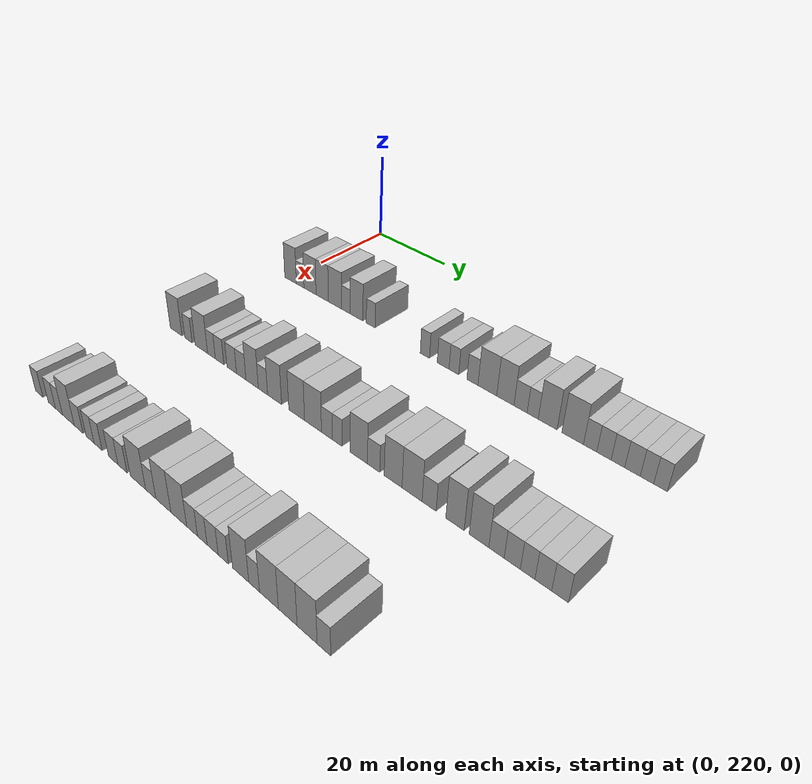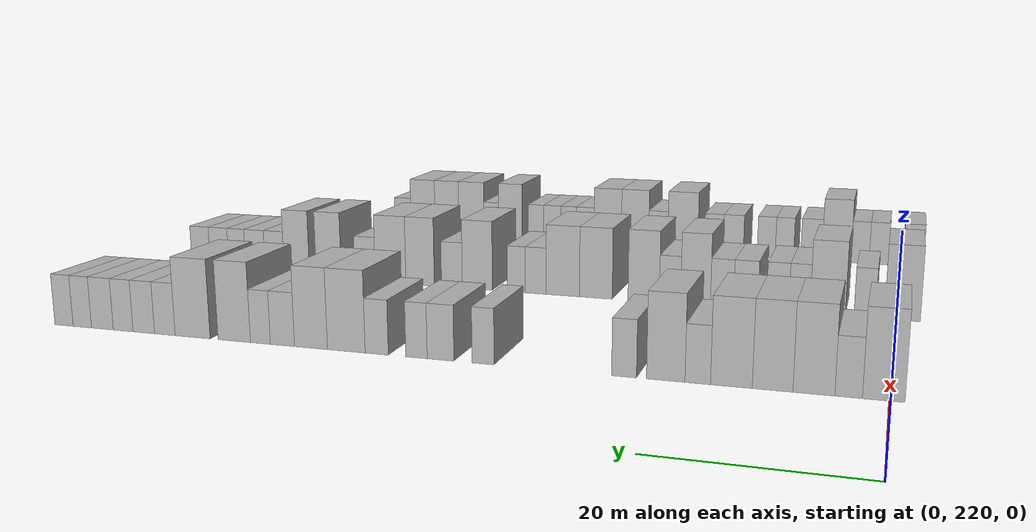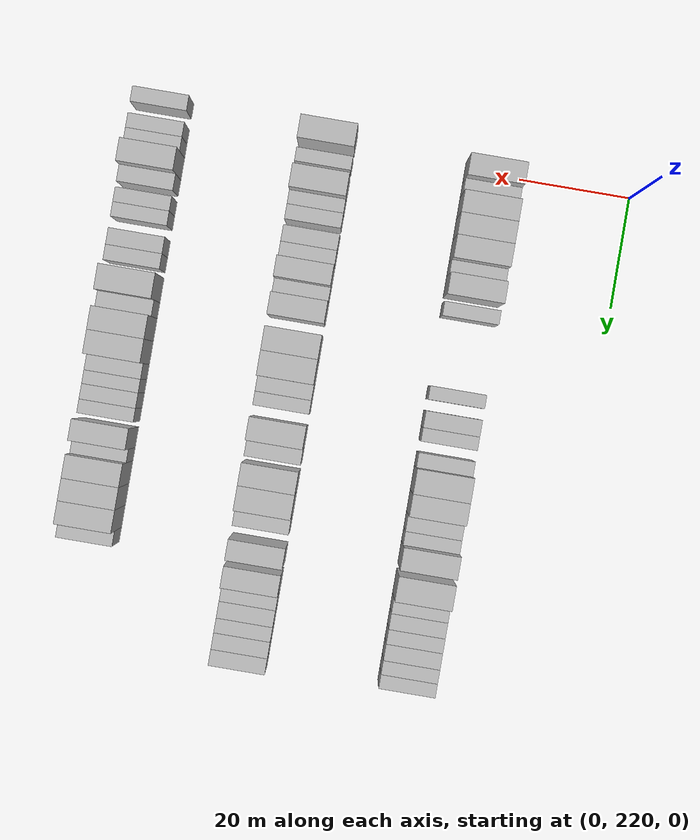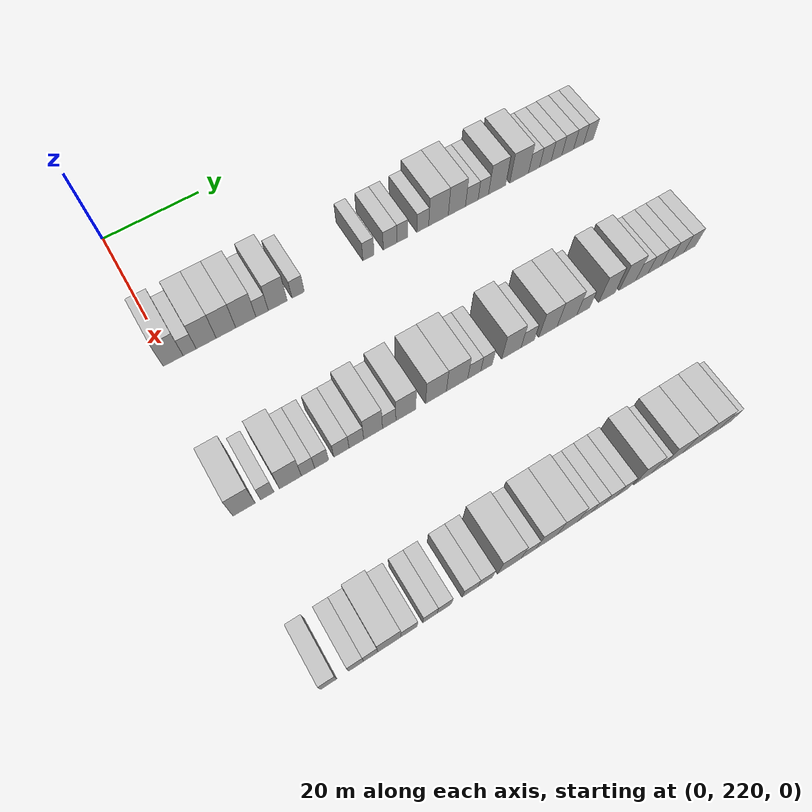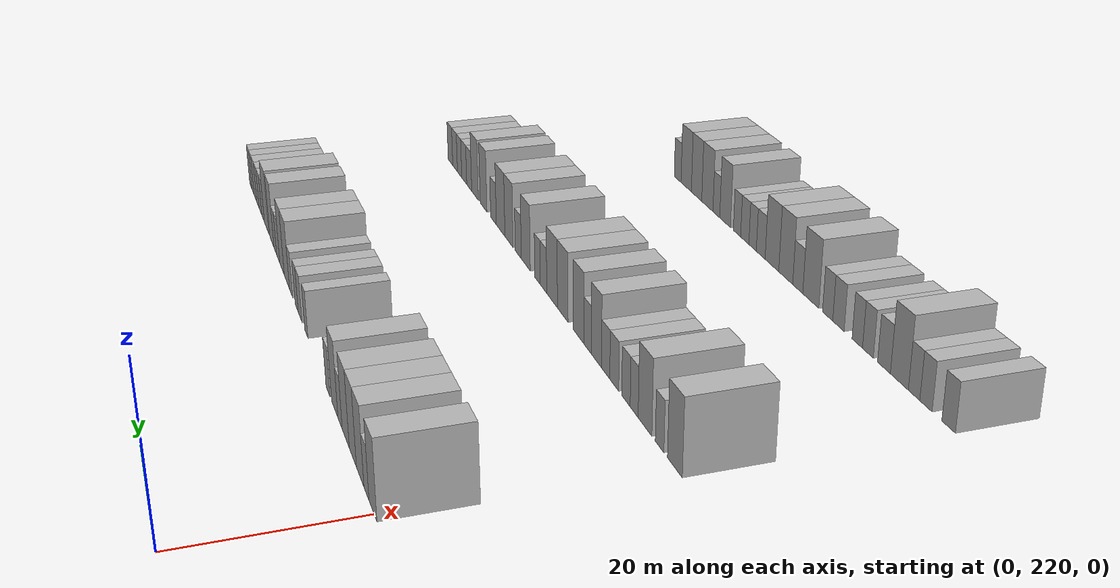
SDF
<sdf version="1.6">
 <world name="default">
  <model name="building_164">
   <static>1</static>
   <pose>25.0000 220.5642 0 0.000000 0.000000 0.000000</pose>
   <link name="link">
    <pose>0 0 4.50 0 0 0</pose>
    <collision name="collision"><geometry><box><size>10.0000 3.8635 9.0000</size></box></geometry></collision>
    <visual name="visual">
     <cast_shadows>0</cast_shadows>
     <geometry><box><size>10.0000 3.8635 9.0000</size></box></geometry>
     <material>
      <script>
       <uri>model://HANNAS_wall/materials/scripts</uri>
       <uri>model://HANNAS_wall/materials/textures</uri>
       <name>vrc/HANNAS_wall</name>
      </script>
     </material>
    </visual>
   </link>
  </model>
  <model name="building_165">
   <static>1</static>
   <pose>25.0000 223.7632 0 0.000000 0.000000 0.000000</pose>
   <link name="link">
    <pose>0 0 3.00 0 0 0</pose>
    <collision name="collision"><geometry><box><size>10.0000 2.5344 6.0000</size></box></geometry></collision>
    <visual name="visual">
     <cast_shadows>0</cast_shadows>
     <geometry><box><size>10.0000 2.5344 6.0000</size></box></geometry>
     <material>
      <script>
       <uri>model://HANNAS_wall/materials/scripts</uri>
       <uri>model://HANNAS_wall/materials/textures</uri>
       <name>vrc/HANNAS_wall</name>
      </script>
     </material>
    </visual>
   </link>
  </model>
  <model name="building_166">
   <static>1</static>
   <pose>25.0000 226.9900 0 0.000000 0.000000 0.000000</pose>
   <link name="link">
    <pose>0 0 4.50 0 0 0</pose>
    <collision name="collision"><geometry><box><size>10.0000 3.9194 9.0000</size></box></geometry></collision>
    <visual name="visual">
     <cast_shadows>0</cast_shadows>
     <geometry><box><size>10.0000 3.9194 9.0000</size></box></geometry>
     <material>
      <script>
       <uri>model://HANNAS_wall/materials/scripts</uri>
       <uri>model://HANNAS_wall/materials/textures</uri>
       <name>vrc/HANNAS_wall</name>
      </script>
     </material>
    </visual>
   </link>
  </model>
  <model name="building_167">
   <static>1</static>
   <pose>25.0000 230.8862 0 0.000000 0.000000 0.000000</pose>
   <link name="link">
    <pose>0 0 4.50 0 0 0</pose>
    <collision name="collision"><geometry><box><size>10.0000 3.8729 9.0000</size></box></geometry></collision>
    <visual name="visual">
     <cast_shadows>0</cast_shadows>
     <geometry><box><size>10.0000 3.8729 9.0000</size></box></geometry>
     <material>
      <script>
       <uri>model://HANNAS_wall/materials/scripts</uri>
       <uri>model://HANNAS_wall/materials/textures</uri>
       <name>vrc/HANNAS_wall</name>
      </script>
     </material>
    </visual>
   </link>
  </model>
  <model name="building_168">
   <static>1</static>
   <pose>25.0000 234.8520 0 0.000000 0.000000 0.000000</pose>
   <link name="link">
    <pose>0 0 4.50 0 0 0</pose>
    <collision name="collision"><geometry><box><size>10.0000 4.0587 9.0000</size></box></geometry></collision>
    <visual name="visual">
     <cast_shadows>0</cast_shadows>
     <geometry><box><size>10.0000 4.0587 9.0000</size></box></geometry>
     <material>
      <script>
       <uri>model://HANNAS_wall/materials/scripts</uri>
       <uri>model://HANNAS_wall/materials/textures</uri>
       <name>vrc/HANNAS_wall</name>
      </script>
     </material>
    </visual>
   </link>
  </model>
  <model name="building_169">
   <static>1</static>
   <pose>25.0000 238.1397 0 0.000000 0.000000 0.000000</pose>
   <link name="link">
    <pose>0 0 3.00 0 0 0</pose>
    <collision name="collision"><geometry><box><size>10.0000 2.5167 6.0000</size></box></geometry></collision>
    <visual name="visual">
     <cast_shadows>0</cast_shadows>
     <geometry><box><size>10.0000 2.5167 6.0000</size></box></geometry>
     <material>
      <script>
       <uri>model://HANNAS_wall/materials/scripts</uri>
       <uri>model://HANNAS_wall/materials/textures</uri>
       <name>vrc/HANNAS_wall</name>
      </script>
     </material>
    </visual>
   </link>
  </model>
  <model name="building_170">
   <static>1</static>
   <pose>25.0000 241.3218 0 0.000000 0.000000 0.000000</pose>
   <link name="link">
    <pose>0 0 4.50 0 0 0</pose>
    <collision name="collision"><geometry><box><size>10.0000 3.8475 9.0000</size></box></geometry></collision>
    <visual name="visual">
     <cast_shadows>0</cast_shadows>
     <geometry><box><size>10.0000 3.8475 9.0000</size></box></geometry>
     <material>
      <script>
       <uri>model://HANNAS_wall/materials/scripts</uri>
       <uri>model://HANNAS_wall/materials/textures</uri>
       <name>vrc/HANNAS_wall</name>
      </script>
     </material>
    </visual>
   </link>
  </model>
  <model name="building_171">
   <static>1</static>
   <pose>25.0000 245.5168 0 0.000000 0.000000 0.000000</pose>
   <link name="link">
    <pose>0 0 3.00 0 0 0</pose>
    <collision name="collision"><geometry><box><size>10.0000 2.5425 6.0000</size></box></geometry></collision>
    <visual name="visual">
     <cast_shadows>0</cast_shadows>
     <geometry><box><size>10.0000 2.5425 6.0000</size></box></geometry>
     <material>
      <script>
       <uri>model://HANNAS_wall/materials/scripts</uri>
       <uri>model://HANNAS_wall/materials/textures</uri>
       <name>vrc/HANNAS_wall</name>
      </script>
     </material>
    </visual>
   </link>
  </model>
  <model name="building_172">
   <static>1</static>
   <pose>25.0000 260.4118 0 0.000000 0.000000 0.000000</pose>
   <link name="link">
    <pose>0 0 3.00 0 0 0</pose>
    <collision name="collision"><geometry><box><size>10.0000 2.4159 6.0000</size></box></geometry></collision>
    <visual name="visual">
     <cast_shadows>0</cast_shadows>
     <geometry><box><size>10.0000 2.4159 6.0000</size></box></geometry>
     <material>
      <script>
       <uri>model://HANNAS_wall/materials/scripts</uri>
       <uri>model://HANNAS_wall/materials/textures</uri>
       <name>vrc/HANNAS_wall</name>
      </script>
     </material>
    </visual>
   </link>
  </model>
  <model name="building_173">
   <static>1</static>
   <pose>25.0000 265.1169 0 0.000000 0.000000 0.000000</pose>
   <link name="link">
    <pose>0 0 3.00 0 0 0</pose>
    <collision name="collision"><geometry><box><size>10.0000 2.9942 6.0000</size></box></geometry></collision>
    <visual name="visual">
     <cast_shadows>0</cast_shadows>
     <geometry><box><size>10.0000 2.9942 6.0000</size></box></geometry>
     <material>
      <script>
       <uri>model://HANNAS_wall/materials/scripts</uri>
       <uri>model://HANNAS_wall/materials/textures</uri>
       <name>vrc/HANNAS_wall</name>
      </script>
     </material>
    </visual>
   </link>
  </model>
  <model name="building_174">
   <static>1</static>
   <pose>25.0000 267.8173 0 0.000000 0.000000 0.000000</pose>
   <link name="link">
    <pose>0 0 3.00 0 0 0</pose>
    <collision name="collision"><geometry><box><size>10.0000 2.4066 6.0000</size></box></geometry></collision>
    <visual name="visual">
     <cast_shadows>0</cast_shadows>
     <geometry><box><size>10.0000 2.4066 6.0000</size></box></geometry>
     <material>
      <script>
       <uri>model://HANNAS_wall/materials/scripts</uri>
       <uri>model://HANNAS_wall/materials/textures</uri>
       <name>vrc/HANNAS_wall</name>
      </script>
     </material>
    </visual>
   </link>
  </model>
  <model name="building_175">
   <static>1</static>
   <pose>25.0000 272.3539 0 0.000000 0.000000 0.000000</pose>
   <link name="link">
    <pose>0 0 3.00 0 0 0</pose>
    <collision name="collision"><geometry><box><size>10.0000 2.6667 6.0000</size></box></geometry></collision>
    <visual name="visual">
     <cast_shadows>0</cast_shadows>
     <geometry><box><size>10.0000 2.6667 6.0000</size></box></geometry>
     <material>
      <script>
       <uri>model://HANNAS_wall/materials/scripts</uri>
       <uri>model://HANNAS_wall/materials/textures</uri>
       <name>vrc/HANNAS_wall</name>
      </script>
     </material>
    </visual>
   </link>
  </model>
  <model name="building_176">
   <static>1</static>
   <pose>25.0000 275.8998 0 0.000000 0.000000 0.000000</pose>
   <link name="link">
    <pose>0 0 4.50 0 0 0</pose>
    <collision name="collision"><geometry><box><size>10.0000 4.4250 9.0000</size></box></geometry></collision>
    <visual name="visual">
     <cast_shadows>0</cast_shadows>
     <geometry><box><size>10.0000 4.4250 9.0000</size></box></geometry>
     <material>
      <script>
       <uri>model://HANNAS_wall/materials/scripts</uri>
       <uri>model://HANNAS_wall/materials/textures</uri>
       <name>vrc/HANNAS_wall</name>
      </script>
     </material>
    </visual>
   </link>
  </model>
  <model name="building_177">
   <static>1</static>
   <pose>25.0000 280.0776 0 0.000000 0.000000 0.000000</pose>
   <link name="link">
    <pose>0 0 4.50 0 0 0</pose>
    <collision name="collision"><geometry><box><size>10.0000 3.9306 9.0000</size></box></geometry></collision>
    <visual name="visual">
     <cast_shadows>0</cast_shadows>
     <geometry><box><size>10.0000 3.9306 9.0000</size></box></geometry>
     <material>
      <script>
       <uri>model://HANNAS_wall/materials/scripts</uri>
       <uri>model://HANNAS_wall/materials/textures</uri>
       <name>vrc/HANNAS_wall</name>
      </script>
     </material>
    </visual>
   </link>
  </model>
  <model name="building_178">
   <static>1</static>
   <pose>25.0000 283.5061 0 0.000000 0.000000 0.000000</pose>
   <link name="link">
    <pose>0 0 3.00 0 0 0</pose>
    <collision name="collision"><geometry><box><size>10.0000 2.9264 6.0000</size></box></geometry></collision>
    <visual name="visual">
     <cast_shadows>0</cast_shadows>
     <geometry><box><size>10.0000 2.9264 6.0000</size></box></geometry>
     <material>
      <script>
       <uri>model://HANNAS_wall/materials/scripts</uri>
       <uri>model://HANNAS_wall/materials/textures</uri>
       <name>vrc/HANNAS_wall</name>
      </script>
     </material>
    </visual>
   </link>
  </model>
  <model name="building_179">
   <static>1</static>
   <pose>25.0000 286.1858 0 0.000000 0.000000 0.000000</pose>
   <link name="link">
    <pose>0 0 3.00 0 0 0</pose>
    <collision name="collision"><geometry><box><size>10.0000 2.4328 6.0000</size></box></geometry></collision>
    <visual name="visual">
     <cast_shadows>0</cast_shadows>
     <geometry><box><size>10.0000 2.4328 6.0000</size></box></geometry>
     <material>
      <script>
       <uri>model://HANNAS_wall/materials/scripts</uri>
       <uri>model://HANNAS_wall/materials/textures</uri>
       <name>vrc/HANNAS_wall</name>
      </script>
     </material>
    </visual>
   </link>
  </model>
  <model name="building_180">
   <static>1</static>
   <pose>25.0000 289.4101 0 0.000000 0.000000 0.000000</pose>
   <link name="link">
    <pose>0 0 4.50 0 0 0</pose>
    <collision name="collision"><geometry><box><size>10.0000 4.0158 9.0000</size></box></geometry></collision>
    <visual name="visual">
     <cast_shadows>0</cast_shadows>
     <geometry><box><size>10.0000 4.0158 9.0000</size></box></geometry>
     <material>
      <script>
       <uri>model://HANNAS_wall/materials/scripts</uri>
       <uri>model://HANNAS_wall/materials/textures</uri>
       <name>vrc/HANNAS_wall</name>
      </script>
     </material>
    </visual>
   </link>
  </model>
  <model name="building_181">
   <static>1</static>
   <pose>25.0000 294.6374 0 0.000000 0.000000 0.000000</pose>
   <link name="link">
    <pose>0 0 4.50 0 0 0</pose>
    <collision name="collision"><geometry><box><size>10.0000 4.4389 9.0000</size></box></geometry></collision>
    <visual name="visual">
     <cast_shadows>0</cast_shadows>
     <geometry><box><size>10.0000 4.4389 9.0000</size></box></geometry>
     <material>
      <script>
       <uri>model://HANNAS_wall/materials/scripts</uri>
       <uri>model://HANNAS_wall/materials/textures</uri>
       <name>vrc/HANNAS_wall</name>
      </script>
     </material>
    </visual>
   </link>
  </model>
  <model name="building_182">
   <static>1</static>
   <pose>25.0000 298.1856 0 0.000000 0.000000 0.000000</pose>
   <link name="link">
    <pose>0 0 3.00 0 0 0</pose>
    <collision name="collision"><geometry><box><size>10.0000 2.6575 6.0000</size></box></geometry></collision>
    <visual name="visual">
     <cast_shadows>0</cast_shadows>
     <geometry><box><size>10.0000 2.6575 6.0000</size></box></geometry>
     <material>
      <script>
       <uri>model://HANNAS_wall/materials/scripts</uri>
       <uri>model://HANNAS_wall/materials/textures</uri>
       <name>vrc/HANNAS_wall</name>
      </script>
     </material>
    </visual>
   </link>
  </model>
  <model name="building_183">
   <static>1</static>
   <pose>25.0000 300.9155 0 0.000000 0.000000 0.000000</pose>
   <link name="link">
    <pose>0 0 3.00 0 0 0</pose>
    <collision name="collision"><geometry><box><size>10.0000 2.8022 6.0000</size></box></geometry></collision>
    <visual name="visual">
     <cast_shadows>0</cast_shadows>
     <geometry><box><size>10.0000 2.8022 6.0000</size></box></geometry>
     <material>
      <script>
       <uri>model://HANNAS_wall/materials/scripts</uri>
       <uri>model://HANNAS_wall/materials/textures</uri>
       <name>vrc/HANNAS_wall</name>
      </script>
     </material>
    </visual>
   </link>
  </model>
  <model name="building_184">
   <static>1</static>
   <pose>25.0000 303.6143 0 0.000000 0.000000 0.000000</pose>
   <link name="link">
    <pose>0 0 3.00 0 0 0</pose>
    <collision name="collision"><geometry><box><size>10.0000 2.5955 6.0000</size></box></geometry></collision>
    <visual name="visual">
     <cast_shadows>0</cast_shadows>
     <geometry><box><size>10.0000 2.5955 6.0000</size></box></geometry>
     <material>
      <script>
       <uri>model://HANNAS_wall/materials/scripts</uri>
       <uri>model://HANNAS_wall/materials/textures</uri>
       <name>vrc/HANNAS_wall</name>
      </script>
     </material>
    </visual>
   </link>
  </model>
  <model name="building_185">
   <static>1</static>
   <pose>25.0000 306.3639 0 0.000000 0.000000 0.000000</pose>
   <link name="link">
    <pose>0 0 3.00 0 0 0</pose>
    <collision name="collision"><geometry><box><size>10.0000 2.9038 6.0000</size></box></geometry></collision>
    <visual name="visual">
     <cast_shadows>0</cast_shadows>
     <geometry><box><size>10.0000 2.9038 6.0000</size></box></geometry>
     <material>
      <script>
       <uri>model://HANNAS_wall/materials/scripts</uri>
       <uri>model://HANNAS_wall/materials/textures</uri>
       <name>vrc/HANNAS_wall</name>
      </script>
     </material>
    </visual>
   </link>
  </model>
  <model name="building_186">
   <static>1</static>
   <pose>25.0000 309.0533 0 0.000000 0.000000 0.000000</pose>
   <link name="link">
    <pose>0 0 3.00 0 0 0</pose>
    <collision name="collision"><geometry><box><size>10.0000 2.4750 6.0000</size></box></geometry></collision>
    <visual name="visual">
     <cast_shadows>0</cast_shadows>
     <geometry><box><size>10.0000 2.4750 6.0000</size></box></geometry>
     <material>
      <script>
       <uri>model://HANNAS_wall/materials/scripts</uri>
       <uri>model://HANNAS_wall/materials/textures</uri>
       <name>vrc/HANNAS_wall</name>
      </script>
     </material>
    </visual>
   </link>
  </model>
  <model name="building_187">
   <static>1</static>
   <pose>25.0000 311.5252 0 0.000000 0.000000 0.000000</pose>
   <link name="link">
    <pose>0 0 3.00 0 0 0</pose>
    <collision name="collision"><geometry><box><size>10.0000 2.4687 6.0000</size></box></geometry></collision>
    <visual name="visual">
     <cast_shadows>0</cast_shadows>
     <geometry><box><size>10.0000 2.4687 6.0000</size></box></geometry>
     <material>
      <script>
       <uri>model://HANNAS_wall/materials/scripts</uri>
       <uri>model://HANNAS_wall/materials/textures</uri>
       <name>vrc/HANNAS_wall</name>
      </script>
     </material>
    </visual>
   </link>
  </model>
  <model name="building_404">
   <static>1</static>
   <pose>55.0000 219.0842 0 0.000000 0.000000 0.000000</pose>
   <link name="link">
    <pose>0 0 4.50 0 0 0</pose>
    <collision name="collision"><geometry><box><size>10.0000 4.0423 9.0000</size></box></geometry></collision>
    <visual name="visual">
     <cast_shadows>0</cast_shadows>
     <geometry><box><size>10.0000 4.0423 9.0000</size></box></geometry>
     <material>
      <script>
       <uri>model://HANNAS_wall/materials/scripts</uri>
       <uri>model://HANNAS_wall/materials/textures</uri>
       <name>vrc/HANNAS_wall</name>
      </script>
     </material>
    </visual>
   </link>
  </model>
  <model name="building_405">
   <static>1</static>
   <pose>55.0000 223.3352 0 0.000000 0.000000 0.000000</pose>
   <link name="link">
    <pose>0 0 3.00 0 0 0</pose>
    <collision name="collision"><geometry><box><size>10.0000 2.4596 6.0000</size></box></geometry></collision>
    <visual name="visual">
     <cast_shadows>0</cast_shadows>
     <geometry><box><size>10.0000 2.4596 6.0000</size></box></geometry>
     <material>
      <script>
       <uri>model://HANNAS_wall/materials/scripts</uri>
       <uri>model://HANNAS_wall/materials/textures</uri>
       <name>vrc/HANNAS_wall</name>
      </script>
     </material>
    </visual>
   </link>
  </model>
  <model name="building_406">
   <static>1</static>
   <pose>55.0000 227.6159 0 0.000000 0.000000 0.000000</pose>
   <link name="link">
    <pose>0 0 4.50 0 0 0</pose>
    <collision name="collision"><geometry><box><size>10.0000 4.1019 9.0000</size></box></geometry></collision>
    <visual name="visual">
     <cast_shadows>0</cast_shadows>
     <geometry><box><size>10.0000 4.1019 9.0000</size></box></geometry>
     <material>
      <script>
       <uri>model://HANNAS_wall/materials/scripts</uri>
       <uri>model://HANNAS_wall/materials/textures</uri>
       <name>vrc/HANNAS_wall</name>
      </script>
     </material>
    </visual>
   </link>
  </model>
  <model name="building_407">
   <static>1</static>
   <pose>55.0000 230.9079 0 0.000000 0.000000 0.000000</pose>
   <link name="link">
    <pose>0 0 3.00 0 0 0</pose>
    <collision name="collision"><geometry><box><size>10.0000 2.4822 6.0000</size></box></geometry></collision>
    <visual name="visual">
     <cast_shadows>0</cast_shadows>
     <geometry><box><size>10.0000 2.4822 6.0000</size></box></geometry>
     <material>
      <script>
       <uri>model://HANNAS_wall/materials/scripts</uri>
       <uri>model://HANNAS_wall/materials/textures</uri>
       <name>vrc/HANNAS_wall</name>
      </script>
     </material>
    </visual>
   </link>
  </model>
  <model name="building_408">
   <static>1</static>
   <pose>55.0000 233.4861 0 0.000000 0.000000 0.000000</pose>
   <link name="link">
    <pose>0 0 3.00 0 0 0</pose>
    <collision name="collision"><geometry><box><size>10.0000 2.6741 6.0000</size></box></geometry></collision>
    <visual name="visual">
     <cast_shadows>0</cast_shadows>
     <geometry><box><size>10.0000 2.6741 6.0000</size></box></geometry>
     <material>
      <script>
       <uri>model://HANNAS_wall/materials/scripts</uri>
       <uri>model://HANNAS_wall/materials/textures</uri>
       <name>vrc/HANNAS_wall</name>
      </script>
     </material>
    </visual>
   </link>
  </model>
  <model name="building_409">
   <static>1</static>
   <pose>55.0000 237.2934 0 0.000000 0.000000 0.000000</pose>
   <link name="link">
    <pose>0 0 3.00 0 0 0</pose>
    <collision name="collision"><geometry><box><size>10.0000 2.9405 6.0000</size></box></geometry></collision>
    <visual name="visual">
     <cast_shadows>0</cast_shadows>
     <geometry><box><size>10.0000 2.9405 6.0000</size></box></geometry>
     <material>
      <script>
       <uri>model://HANNAS_wall/materials/scripts</uri>
       <uri>model://HANNAS_wall/materials/textures</uri>
       <name>vrc/HANNAS_wall</name>
      </script>
     </material>
    </visual>
   </link>
  </model>
  <model name="building_410">
   <static>1</static>
   <pose>55.0000 240.1782 0 0.000000 0.000000 0.000000</pose>
   <link name="link">
    <pose>0 0 3.00 0 0 0</pose>
    <collision name="collision"><geometry><box><size>10.0000 2.8291 6.0000</size></box></geometry></collision>
    <visual name="visual">
     <cast_shadows>0</cast_shadows>
     <geometry><box><size>10.0000 2.8291 6.0000</size></box></geometry>
     <material>
      <script>
       <uri>model://HANNAS_wall/materials/scripts</uri>
       <uri>model://HANNAS_wall/materials/textures</uri>
       <name>vrc/HANNAS_wall</name>
      </script>
     </material>
    </visual>
   </link>
  </model>
  <model name="building_411">
   <static>1</static>
   <pose>55.0000 243.4326 0 0.000000 0.000000 0.000000</pose>
   <link name="link">
    <pose>0 0 4.50 0 0 0</pose>
    <collision name="collision"><geometry><box><size>10.0000 3.6797 9.0000</size></box></geometry></collision>
    <visual name="visual">
     <cast_shadows>0</cast_shadows>
     <geometry><box><size>10.0000 3.6797 9.0000</size></box></geometry>
     <material>
      <script>
       <uri>model://HANNAS_wall/materials/scripts</uri>
       <uri>model://HANNAS_wall/materials/textures</uri>
       <name>vrc/HANNAS_wall</name>
      </script>
     </material>
    </visual>
   </link>
  </model>
  <model name="building_412">
   <static>1</static>
   <pose>55.0000 246.5973 0 0.000000 0.000000 0.000000</pose>
   <link name="link">
    <pose>0 0 3.00 0 0 0</pose>
    <collision name="collision"><geometry><box><size>10.0000 2.6496 6.0000</size></box></geometry></collision>
    <visual name="visual">
     <cast_shadows>0</cast_shadows>
     <geometry><box><size>10.0000 2.6496 6.0000</size></box></geometry>
     <material>
      <script>
       <uri>model://HANNAS_wall/materials/scripts</uri>
       <uri>model://HANNAS_wall/materials/textures</uri>
       <name>vrc/HANNAS_wall</name>
      </script>
     </material>
    </visual>
   </link>
  </model>
  <model name="building_413">
   <static>1</static>
   <pose>55.0000 249.9011 0 0.000000 0.000000 0.000000</pose>
   <link name="link">
    <pose>0 0 4.50 0 0 0</pose>
    <collision name="collision"><geometry><box><size>10.0000 3.9580 9.0000</size></box></geometry></collision>
    <visual name="visual">
     <cast_shadows>0</cast_shadows>
     <geometry><box><size>10.0000 3.9580 9.0000</size></box></geometry>
     <material>
      <script>
       <uri>model://HANNAS_wall/materials/scripts</uri>
       <uri>model://HANNAS_wall/materials/textures</uri>
       <name>vrc/HANNAS_wall</name>
      </script>
     </material>
    </visual>
   </link>
  </model>
  <model name="building_414">
   <static>1</static>
   <pose>55.0000 256.0045 0 0.000000 0.000000 0.000000</pose>
   <link name="link">
    <pose>0 0 4.50 0 0 0</pose>
    <collision name="collision"><geometry><box><size>10.0000 4.2488 9.0000</size></box></geometry></collision>
    <visual name="visual">
     <cast_shadows>0</cast_shadows>
     <geometry><box><size>10.0000 4.2488 9.0000</size></box></geometry>
     <material>
      <script>
       <uri>model://HANNAS_wall/materials/scripts</uri>
       <uri>model://HANNAS_wall/materials/textures</uri>
       <name>vrc/HANNAS_wall</name>
      </script>
     </material>
    </visual>
   </link>
  </model>
  <model name="building_415">
   <static>1</static>
   <pose>55.0000 260.3371 0 0.000000 0.000000 0.000000</pose>
   <link name="link">
    <pose>0 0 4.50 0 0 0</pose>
    <collision name="collision"><geometry><box><size>10.0000 4.4164 9.0000</size></box></geometry></collision>
    <visual name="visual">
     <cast_shadows>0</cast_shadows>
     <geometry><box><size>10.0000 4.4164 9.0000</size></box></geometry>
     <material>
      <script>
       <uri>model://HANNAS_wall/materials/scripts</uri>
       <uri>model://HANNAS_wall/materials/textures</uri>
       <name>vrc/HANNAS_wall</name>
      </script>
     </material>
    </visual>
   </link>
  </model>
  <model name="building_416">
   <static>1</static>
   <pose>55.0000 263.9160 0 0.000000 0.000000 0.000000</pose>
   <link name="link">
    <pose>0 0 3.00 0 0 0</pose>
    <collision name="collision"><geometry><box><size>10.0000 2.7414 6.0000</size></box></geometry></collision>
    <visual name="visual">
     <cast_shadows>0</cast_shadows>
     <geometry><box><size>10.0000 2.7414 6.0000</size></box></geometry>
     <material>
      <script>
       <uri>model://HANNAS_wall/materials/scripts</uri>
       <uri>model://HANNAS_wall/materials/textures</uri>
       <name>vrc/HANNAS_wall</name>
      </script>
     </material>
    </visual>
   </link>
  </model>
  <model name="building_417">
   <static>1</static>
   <pose>55.0000 266.5056 0 0.000000 0.000000 0.000000</pose>
   <link name="link">
    <pose>0 0 3.00 0 0 0</pose>
    <collision name="collision"><geometry><box><size>10.0000 2.4378 6.0000</size></box></geometry></collision>
    <visual name="visual">
     <cast_shadows>0</cast_shadows>
     <geometry><box><size>10.0000 2.4378 6.0000</size></box></geometry>
     <material>
      <script>
       <uri>model://HANNAS_wall/materials/scripts</uri>
       <uri>model://HANNAS_wall/materials/textures</uri>
       <name>vrc/HANNAS_wall</name>
      </script>
     </material>
    </visual>
   </link>
  </model>
  <model name="building_418">
   <static>1</static>
   <pose>55.0000 271.7836 0 0.000000 0.000000 0.000000</pose>
   <link name="link">
    <pose>0 0 4.50 0 0 0</pose>
    <collision name="collision"><geometry><box><size>10.0000 4.1181 9.0000</size></box></geometry></collision>
    <visual name="visual">
     <cast_shadows>0</cast_shadows>
     <geometry><box><size>10.0000 4.1181 9.0000</size></box></geometry>
     <material>
      <script>
       <uri>model://HANNAS_wall/materials/scripts</uri>
       <uri>model://HANNAS_wall/materials/textures</uri>
       <name>vrc/HANNAS_wall</name>
      </script>
     </material>
    </visual>
   </link>
  </model>
  <model name="building_419">
   <static>1</static>
   <pose>55.0000 275.2886 0 0.000000 0.000000 0.000000</pose>
   <link name="link">
    <pose>0 0 3.00 0 0 0</pose>
    <collision name="collision"><geometry><box><size>10.0000 2.8920 6.0000</size></box></geometry></collision>
    <visual name="visual">
     <cast_shadows>0</cast_shadows>
     <geometry><box><size>10.0000 2.8920 6.0000</size></box></geometry>
     <material>
      <script>
       <uri>model://HANNAS_wall/materials/scripts</uri>
       <uri>model://HANNAS_wall/materials/textures</uri>
       <name>vrc/HANNAS_wall</name>
      </script>
     </material>
    </visual>
   </link>
  </model>
  <model name="building_420">
   <static>1</static>
   <pose>55.0000 279.7410 0 0.000000 0.000000 0.000000</pose>
   <link name="link">
    <pose>0 0 4.50 0 0 0</pose>
    <collision name="collision"><geometry><box><size>10.0000 4.0128 9.0000</size></box></geometry></collision>
    <visual name="visual">
     <cast_shadows>0</cast_shadows>
     <geometry><box><size>10.0000 4.0128 9.0000</size></box></geometry>
     <material>
      <script>
       <uri>model://HANNAS_wall/materials/scripts</uri>
       <uri>model://HANNAS_wall/materials/textures</uri>
       <name>vrc/HANNAS_wall</name>
      </script>
     </material>
    </visual>
   </link>
  </model>
  <model name="building_421">
   <static>1</static>
   <pose>55.0000 283.9326 0 0.000000 0.000000 0.000000</pose>
   <link name="link">
    <pose>0 0 4.50 0 0 0</pose>
    <collision name="collision"><geometry><box><size>10.0000 4.3704 9.0000</size></box></geometry></collision>
    <visual name="visual">
     <cast_shadows>0</cast_shadows>
     <geometry><box><size>10.0000 4.3704 9.0000</size></box></geometry>
     <material>
      <script>
       <uri>model://HANNAS_wall/materials/scripts</uri>
       <uri>model://HANNAS_wall/materials/textures</uri>
       <name>vrc/HANNAS_wall</name>
      </script>
     </material>
    </visual>
   </link>
  </model>
  <model name="building_422">
   <static>1</static>
   <pose>55.0000 287.5928 0 0.000000 0.000000 0.000000</pose>
   <link name="link">
    <pose>0 0 3.00 0 0 0</pose>
    <collision name="collision"><geometry><box><size>10.0000 2.9500 6.0000</size></box></geometry></collision>
    <visual name="visual">
     <cast_shadows>0</cast_shadows>
     <geometry><box><size>10.0000 2.9500 6.0000</size></box></geometry>
     <material>
      <script>
       <uri>model://HANNAS_wall/materials/scripts</uri>
       <uri>model://HANNAS_wall/materials/textures</uri>
       <name>vrc/HANNAS_wall</name>
      </script>
     </material>
    </visual>
   </link>
  </model>
  <model name="building_423">
   <static>1</static>
   <pose>55.0000 292.9176 0 0.000000 0.000000 0.000000</pose>
   <link name="link">
    <pose>0 0 4.50 0 0 0</pose>
    <collision name="collision"><geometry><box><size>10.0000 3.6997 9.0000</size></box></geometry></collision>
    <visual name="visual">
     <cast_shadows>0</cast_shadows>
     <geometry><box><size>10.0000 3.6997 9.0000</size></box></geometry>
     <material>
      <script>
       <uri>model://HANNAS_wall/materials/scripts</uri>
       <uri>model://HANNAS_wall/materials/textures</uri>
       <name>vrc/HANNAS_wall</name>
      </script>
     </material>
    </visual>
   </link>
  </model>
  <model name="building_424">
   <static>1</static>
   <pose>55.0000 297.6640 0 0.000000 0.000000 0.000000</pose>
   <link name="link">
    <pose>0 0 4.50 0 0 0</pose>
    <collision name="collision"><geometry><box><size>10.0000 3.7930 9.0000</size></box></geometry></collision>
    <visual name="visual">
     <cast_shadows>0</cast_shadows>
     <geometry><box><size>10.0000 3.7930 9.0000</size></box></geometry>
     <material>
      <script>
       <uri>model://HANNAS_wall/materials/scripts</uri>
       <uri>model://HANNAS_wall/materials/textures</uri>
       <name>vrc/HANNAS_wall</name>
      </script>
     </material>
    </visual>
   </link>
  </model>
  <model name="building_425">
   <static>1</static>
   <pose>55.0000 301.0048 0 0.000000 0.000000 0.000000</pose>
   <link name="link">
    <pose>0 0 3.00 0 0 0</pose>
    <collision name="collision"><geometry><box><size>10.0000 2.8886 6.0000</size></box></geometry></collision>
    <visual name="visual">
     <cast_shadows>0</cast_shadows>
     <geometry><box><size>10.0000 2.8886 6.0000</size></box></geometry>
     <material>
      <script>
       <uri>model://HANNAS_wall/materials/scripts</uri>
       <uri>model://HANNAS_wall/materials/textures</uri>
       <name>vrc/HANNAS_wall</name>
      </script>
     </material>
    </visual>
   </link>
  </model>
  <model name="building_426">
   <static>1</static>
   <pose>55.0000 303.9340 0 0.000000 0.000000 0.000000</pose>
   <link name="link">
    <pose>0 0 3.00 0 0 0</pose>
    <collision name="collision"><geometry><box><size>10.0000 2.9697 6.0000</size></box></geometry></collision>
    <visual name="visual">
     <cast_shadows>0</cast_shadows>
     <geometry><box><size>10.0000 2.9697 6.0000</size></box></geometry>
     <material>
      <script>
       <uri>model://HANNAS_wall/materials/scripts</uri>
       <uri>model://HANNAS_wall/materials/textures</uri>
       <name>vrc/HANNAS_wall</name>
      </script>
     </material>
    </visual>
   </link>
  </model>
  <model name="building_427">
   <static>1</static>
   <pose>55.0000 306.7250 0 0.000000 0.000000 0.000000</pose>
   <link name="link">
    <pose>0 0 3.00 0 0 0</pose>
    <collision name="collision"><geometry><box><size>10.0000 2.6121 6.0000</size></box></geometry></collision>
    <visual name="visual">
     <cast_shadows>0</cast_shadows>
     <geometry><box><size>10.0000 2.6121 6.0000</size></box></geometry>
     <material>
      <script>
       <uri>model://HANNAS_wall/materials/scripts</uri>
       <uri>model://HANNAS_wall/materials/textures</uri>
       <name>vrc/HANNAS_wall</name>
      </script>
     </material>
    </visual>
   </link>
  </model>
  <model name="building_428">
   <static>1</static>
   <pose>55.0000 309.4891 0 0.000000 0.000000 0.000000</pose>
   <link name="link">
    <pose>0 0 3.00 0 0 0</pose>
    <collision name="collision"><geometry><box><size>10.0000 2.9162 6.0000</size></box></geometry></collision>
    <visual name="visual">
     <cast_shadows>0</cast_shadows>
     <geometry><box><size>10.0000 2.9162 6.0000</size></box></geometry>
     <material>
      <script>
       <uri>model://HANNAS_wall/materials/scripts</uri>
       <uri>model://HANNAS_wall/materials/textures</uri>
       <name>vrc/HANNAS_wall</name>
      </script>
     </material>
    </visual>
   </link>
  </model>
  <model name="building_429">
   <static>1</static>
   <pose>55.0000 312.3753 0 0.000000 0.000000 0.000000</pose>
   <link name="link">
    <pose>0 0 3.00 0 0 0</pose>
    <collision name="collision"><geometry><box><size>10.0000 2.8560 6.0000</size></box></geometry></collision>
    <visual name="visual">
     <cast_shadows>0</cast_shadows>
     <geometry><box><size>10.0000 2.8560 6.0000</size></box></geometry>
     <material>
      <script>
       <uri>model://HANNAS_wall/materials/scripts</uri>
       <uri>model://HANNAS_wall/materials/textures</uri>
       <name>vrc/HANNAS_wall</name>
      </script>
     </material>
    </visual>
   </link>
  </model>
  <model name="building_632">
   <static>1</static>
   <pose>85.0000 217.8019 0 0.000000 0.000000 0.000000</pose>
   <link name="link">
    <pose>0 0 3.00 0 0 0</pose>
    <collision name="collision"><geometry><box><size>10.0000 2.7390 6.0000</size></box></geometry></collision>
    <visual name="visual">
     <cast_shadows>0</cast_shadows>
     <geometry><box><size>10.0000 2.7390 6.0000</size></box></geometry>
     <material>
      <script>
       <uri>model://HANNAS_wall/materials/scripts</uri>
       <uri>model://HANNAS_wall/materials/textures</uri>
       <name>vrc/HANNAS_wall</name>
      </script>
     </material>
    </visual>
   </link>
  </model>
  <model name="building_633">
   <static>1</static>
   <pose>85.0000 222.4766 0 0.000000 0.000000 0.000000</pose>
   <link name="link">
    <pose>0 0 3.00 0 0 0</pose>
    <collision name="collision"><geometry><box><size>10.0000 2.6104 6.0000</size></box></geometry></collision>
    <visual name="visual">
     <cast_shadows>0</cast_shadows>
     <geometry><box><size>10.0000 2.6104 6.0000</size></box></geometry>
     <material>
      <script>
       <uri>model://HANNAS_wall/materials/scripts</uri>
       <uri>model://HANNAS_wall/materials/textures</uri>
       <name>vrc/HANNAS_wall</name>
      </script>
     </material>
    </visual>
   </link>
  </model>
  <model name="building_634">
   <static>1</static>
   <pose>85.0000 225.0274 0 0.000000 0.000000 0.000000</pose>
   <link name="link">
    <pose>0 0 3.00 0 0 0</pose>
    <collision name="collision"><geometry><box><size>10.0000 2.4911 6.0000</size></box></geometry></collision>
    <visual name="visual">
     <cast_shadows>0</cast_shadows>
     <geometry><box><size>10.0000 2.4911 6.0000</size></box></geometry>
     <material>
      <script>
       <uri>model://HANNAS_wall/materials/scripts</uri>
       <uri>model://HANNAS_wall/materials/textures</uri>
       <name>vrc/HANNAS_wall</name>
      </script>
     </material>
    </visual>
   </link>
  </model>
  <model name="building_635">
   <static>1</static>
   <pose>85.0000 228.2878 0 0.000000 0.000000 0.000000</pose>
   <link name="link">
    <pose>0 0 4.50 0 0 0</pose>
    <collision name="collision"><geometry><box><size>10.0000 4.0298 9.0000</size></box></geometry></collision>
    <visual name="visual">
     <cast_shadows>0</cast_shadows>
     <geometry><box><size>10.0000 4.0298 9.0000</size></box></geometry>
     <material>
      <script>
       <uri>model://HANNAS_wall/materials/scripts</uri>
       <uri>model://HANNAS_wall/materials/textures</uri>
       <name>vrc/HANNAS_wall</name>
      </script>
     </material>
    </visual>
   </link>
  </model>
  <model name="building_636">
   <static>1</static>
   <pose>85.0000 231.7925 0 0.000000 0.000000 0.000000</pose>
   <link name="link">
    <pose>0 0 3.00 0 0 0</pose>
    <collision name="collision"><geometry><box><size>10.0000 2.9796 6.0000</size></box></geometry></collision>
    <visual name="visual">
     <cast_shadows>0</cast_shadows>
     <geometry><box><size>10.0000 2.9796 6.0000</size></box></geometry>
     <material>
      <script>
       <uri>model://HANNAS_wall/materials/scripts</uri>
       <uri>model://HANNAS_wall/materials/textures</uri>
       <name>vrc/HANNAS_wall</name>
      </script>
     </material>
    </visual>
   </link>
  </model>
  <model name="building_637">
   <static>1</static>
   <pose>85.0000 235.5925 0 0.000000 0.000000 0.000000</pose>
   <link name="link">
    <pose>0 0 3.00 0 0 0</pose>
    <collision name="collision"><geometry><box><size>10.0000 2.6203 6.0000</size></box></geometry></collision>
    <visual name="visual">
     <cast_shadows>0</cast_shadows>
     <geometry><box><size>10.0000 2.6203 6.0000</size></box></geometry>
     <material>
      <script>
       <uri>model://HANNAS_wall/materials/scripts</uri>
       <uri>model://HANNAS_wall/materials/textures</uri>
       <name>vrc/HANNAS_wall</name>
      </script>
     </material>
    </visual>
   </link>
  </model>
  <model name="building_638">
   <static>1</static>
   <pose>85.0000 238.1965 0 0.000000 0.000000 0.000000</pose>
   <link name="link">
    <pose>0 0 3.00 0 0 0</pose>
    <collision name="collision"><geometry><box><size>10.0000 2.5877 6.0000</size></box></geometry></collision>
    <visual name="visual">
     <cast_shadows>0</cast_shadows>
     <geometry><box><size>10.0000 2.5877 6.0000</size></box></geometry>
     <material>
      <script>
       <uri>model://HANNAS_wall/materials/scripts</uri>
       <uri>model://HANNAS_wall/materials/textures</uri>
       <name>vrc/HANNAS_wall</name>
      </script>
     </material>
    </visual>
   </link>
  </model>
  <model name="building_639">
   <static>1</static>
   <pose>85.0000 242.9699 0 0.000000 0.000000 0.000000</pose>
   <link name="link">
    <pose>0 0 3.00 0 0 0</pose>
    <collision name="collision"><geometry><box><size>10.0000 2.9591 6.0000</size></box></geometry></collision>
    <visual name="visual">
     <cast_shadows>0</cast_shadows>
     <geometry><box><size>10.0000 2.9591 6.0000</size></box></geometry>
     <material>
      <script>
       <uri>model://HANNAS_wall/materials/scripts</uri>
       <uri>model://HANNAS_wall/materials/textures</uri>
       <name>vrc/HANNAS_wall</name>
      </script>
     </material>
    </visual>
   </link>
  </model>
  <model name="building_640">
   <static>1</static>
   <pose>85.0000 245.8084 0 0.000000 0.000000 0.000000</pose>
   <link name="link">
    <pose>0 0 3.00 0 0 0</pose>
    <collision name="collision"><geometry><box><size>10.0000 2.7179 6.0000</size></box></geometry></collision>
    <visual name="visual">
     <cast_shadows>0</cast_shadows>
     <geometry><box><size>10.0000 2.7179 6.0000</size></box></geometry>
     <material>
      <script>
       <uri>model://HANNAS_wall/materials/scripts</uri>
       <uri>model://HANNAS_wall/materials/textures</uri>
       <name>vrc/HANNAS_wall</name>
      </script>
     </material>
    </visual>
   </link>
  </model>
  <model name="building_641">
   <static>1</static>
   <pose>85.0000 250.3992 0 0.000000 0.000000 0.000000</pose>
   <link name="link">
    <pose>0 0 4.50 0 0 0</pose>
    <collision name="collision"><geometry><box><size>10.0000 4.4638 9.0000</size></box></geometry></collision>
    <visual name="visual">
     <cast_shadows>0</cast_shadows>
     <geometry><box><size>10.0000 4.4638 9.0000</size></box></geometry>
     <material>
      <script>
       <uri>model://HANNAS_wall/materials/scripts</uri>
       <uri>model://HANNAS_wall/materials/textures</uri>
       <name>vrc/HANNAS_wall</name>
      </script>
     </material>
    </visual>
   </link>
  </model>
  <model name="building_642">
   <static>1</static>
   <pose>85.0000 254.0775 0 0.000000 0.000000 0.000000</pose>
   <link name="link">
    <pose>0 0 3.00 0 0 0</pose>
    <collision name="collision"><geometry><box><size>10.0000 2.8927 6.0000</size></box></geometry></collision>
    <visual name="visual">
     <cast_shadows>0</cast_shadows>
     <geometry><box><size>10.0000 2.8927 6.0000</size></box></geometry>
     <material>
      <script>
       <uri>model://HANNAS_wall/materials/scripts</uri>
       <uri>model://HANNAS_wall/materials/textures</uri>
       <name>vrc/HANNAS_wall</name>
      </script>
     </material>
    </visual>
   </link>
  </model>
  <model name="building_643">
   <static>1</static>
   <pose>85.0000 257.5944 0 0.000000 0.000000 0.000000</pose>
   <link name="link">
    <pose>0 0 4.50 0 0 0</pose>
    <collision name="collision"><geometry><box><size>10.0000 4.1410 9.0000</size></box></geometry></collision>
    <visual name="visual">
     <cast_shadows>0</cast_shadows>
     <geometry><box><size>10.0000 4.1410 9.0000</size></box></geometry>
     <material>
      <script>
       <uri>model://HANNAS_wall/materials/scripts</uri>
       <uri>model://HANNAS_wall/materials/textures</uri>
       <name>vrc/HANNAS_wall</name>
      </script>
     </material>
    </visual>
   </link>
  </model>
  <model name="building_644">
   <static>1</static>
   <pose>85.0000 261.7603 0 0.000000 0.000000 0.000000</pose>
   <link name="link">
    <pose>0 0 4.50 0 0 0</pose>
    <collision name="collision"><geometry><box><size>10.0000 4.1909 9.0000</size></box></geometry></collision>
    <visual name="visual">
     <cast_shadows>0</cast_shadows>
     <geometry><box><size>10.0000 4.1909 9.0000</size></box></geometry>
     <material>
      <script>
       <uri>model://HANNAS_wall/materials/scripts</uri>
       <uri>model://HANNAS_wall/materials/textures</uri>
       <name>vrc/HANNAS_wall</name>
      </script>
     </material>
    </visual>
   </link>
  </model>
  <model name="building_645">
   <static>1</static>
   <pose>85.0000 265.2533 0 0.000000 0.000000 0.000000</pose>
   <link name="link">
    <pose>0 0 3.00 0 0 0</pose>
    <collision name="collision"><geometry><box><size>10.0000 2.7952 6.0000</size></box></geometry></collision>
    <visual name="visual">
     <cast_shadows>0</cast_shadows>
     <geometry><box><size>10.0000 2.7952 6.0000</size></box></geometry>
     <material>
      <script>
       <uri>model://HANNAS_wall/materials/scripts</uri>
       <uri>model://HANNAS_wall/materials/textures</uri>
       <name>vrc/HANNAS_wall</name>
      </script>
     </material>
    </visual>
   </link>
  </model>
  <model name="building_646">
   <static>1</static>
   <pose>85.0000 267.8594 0 0.000000 0.000000 0.000000</pose>
   <link name="link">
    <pose>0 0 3.00 0 0 0</pose>
    <collision name="collision"><geometry><box><size>10.0000 2.4169 6.0000</size></box></geometry></collision>
    <visual name="visual">
     <cast_shadows>0</cast_shadows>
     <geometry><box><size>10.0000 2.4169 6.0000</size></box></geometry>
     <material>
      <script>
       <uri>model://HANNAS_wall/materials/scripts</uri>
       <uri>model://HANNAS_wall/materials/textures</uri>
       <name>vrc/HANNAS_wall</name>
      </script>
     </material>
    </visual>
   </link>
  </model>
  <model name="building_647">
   <static>1</static>
   <pose>85.0000 270.4324 0 0.000000 0.000000 0.000000</pose>
   <link name="link">
    <pose>0 0 3.00 0 0 0</pose>
    <collision name="collision"><geometry><box><size>10.0000 2.7290 6.0000</size></box></geometry></collision>
    <visual name="visual">
     <cast_shadows>0</cast_shadows>
     <geometry><box><size>10.0000 2.7290 6.0000</size></box></geometry>
     <material>
      <script>
       <uri>model://HANNAS_wall/materials/scripts</uri>
       <uri>model://HANNAS_wall/materials/textures</uri>
       <name>vrc/HANNAS_wall</name>
      </script>
     </material>
    </visual>
   </link>
  </model>
  <model name="building_648">
   <static>1</static>
   <pose>85.0000 273.0219 0 0.000000 0.000000 0.000000</pose>
   <link name="link">
    <pose>0 0 3.00 0 0 0</pose>
    <collision name="collision"><geometry><box><size>10.0000 2.4502 6.0000</size></box></geometry></collision>
    <visual name="visual">
     <cast_shadows>0</cast_shadows>
     <geometry><box><size>10.0000 2.4502 6.0000</size></box></geometry>
     <material>
      <script>
       <uri>model://HANNAS_wall/materials/scripts</uri>
       <uri>model://HANNAS_wall/materials/textures</uri>
       <name>vrc/HANNAS_wall</name>
      </script>
     </material>
    </visual>
   </link>
  </model>
  <model name="building_649">
   <static>1</static>
   <pose>85.0000 277.1264 0 0.000000 0.000000 0.000000</pose>
   <link name="link">
    <pose>0 0 4.50 0 0 0</pose>
    <collision name="collision"><geometry><box><size>10.0000 3.7588 9.0000</size></box></geometry></collision>
    <visual name="visual">
     <cast_shadows>0</cast_shadows>
     <geometry><box><size>10.0000 3.7588 9.0000</size></box></geometry>
     <material>
      <script>
       <uri>model://HANNAS_wall/materials/scripts</uri>
       <uri>model://HANNAS_wall/materials/textures</uri>
       <name>vrc/HANNAS_wall</name>
      </script>
     </material>
    </visual>
   </link>
  </model>
  <model name="building_650">
   <static>1</static>
   <pose>85.0000 280.2157 0 0.000000 0.000000 0.000000</pose>
   <link name="link">
    <pose>0 0 3.00 0 0 0</pose>
    <collision name="collision"><geometry><box><size>10.0000 2.4197 6.0000</size></box></geometry></collision>
    <visual name="visual">
     <cast_shadows>0</cast_shadows>
     <geometry><box><size>10.0000 2.4197 6.0000</size></box></geometry>
     <material>
      <script>
       <uri>model://HANNAS_wall/materials/scripts</uri>
       <uri>model://HANNAS_wall/materials/textures</uri>
       <name>vrc/HANNAS_wall</name>
      </script>
     </material>
    </visual>
   </link>
  </model>
  <model name="building_651">
   <static>1</static>
   <pose>85.0000 283.4914 0 0.000000 0.000000 0.000000</pose>
   <link name="link">
    <pose>0 0 4.50 0 0 0</pose>
    <collision name="collision"><geometry><box><size>10.0000 4.1317 9.0000</size></box></geometry></collision>
    <visual name="visual">
     <cast_shadows>0</cast_shadows>
     <geometry><box><size>10.0000 4.1317 9.0000</size></box></geometry>
     <material>
      <script>
       <uri>model://HANNAS_wall/materials/scripts</uri>
       <uri>model://HANNAS_wall/materials/textures</uri>
       <name>vrc/HANNAS_wall</name>
      </script>
     </material>
    </visual>
   </link>
  </model>
  <model name="building_652">
   <static>1</static>
   <pose>85.0000 287.5306 0 0.000000 0.000000 0.000000</pose>
   <link name="link">
    <pose>0 0 4.50 0 0 0</pose>
    <collision name="collision"><geometry><box><size>10.0000 3.9467 9.0000</size></box></geometry></collision>
    <visual name="visual">
     <cast_shadows>0</cast_shadows>
     <geometry><box><size>10.0000 3.9467 9.0000</size></box></geometry>
     <material>
      <script>
       <uri>model://HANNAS_wall/materials/scripts</uri>
       <uri>model://HANNAS_wall/materials/textures</uri>
       <name>vrc/HANNAS_wall</name>
      </script>
     </material>
    </visual>
   </link>
  </model>
  <model name="building_653">
   <static>1</static>
   <pose>85.0000 291.5290 0 0.000000 0.000000 0.000000</pose>
   <link name="link">
    <pose>0 0 4.50 0 0 0</pose>
    <collision name="collision"><geometry><box><size>10.0000 4.0503 9.0000</size></box></geometry></collision>
    <visual name="visual">
     <cast_shadows>0</cast_shadows>
     <geometry><box><size>10.0000 4.0503 9.0000</size></box></geometry>
     <material>
      <script>
       <uri>model://HANNAS_wall/materials/scripts</uri>
       <uri>model://HANNAS_wall/materials/textures</uri>
       <name>vrc/HANNAS_wall</name>
      </script>
     </material>
    </visual>
   </link>
  </model>
  <model name="building_654">
   <static>1</static>
   <pose>85.0000 294.9038 0 0.000000 0.000000 0.000000</pose>
   <link name="link">
    <pose>0 0 3.00 0 0 0</pose>
    <collision name="collision"><geometry><box><size>10.0000 2.6993 6.0000</size></box></geometry></collision>
    <visual name="visual">
     <cast_shadows>0</cast_shadows>
     <geometry><box><size>10.0000 2.6993 6.0000</size></box></geometry>
     <material>
      <script>
       <uri>model://HANNAS_wall/materials/scripts</uri>
       <uri>model://HANNAS_wall/materials/textures</uri>
       <name>vrc/HANNAS_wall</name>
      </script>
     </material>
    </visual>
   </link>
  </model>
 </world>
</sdf>
